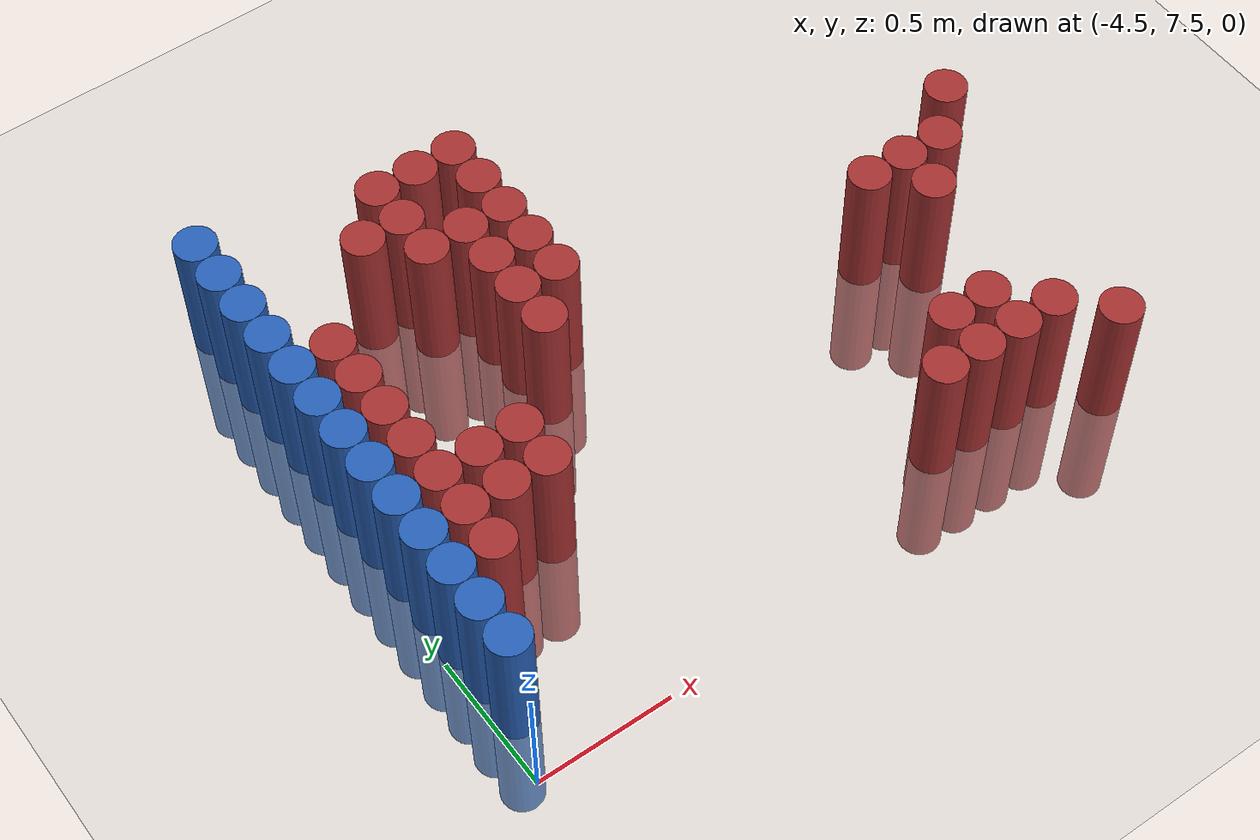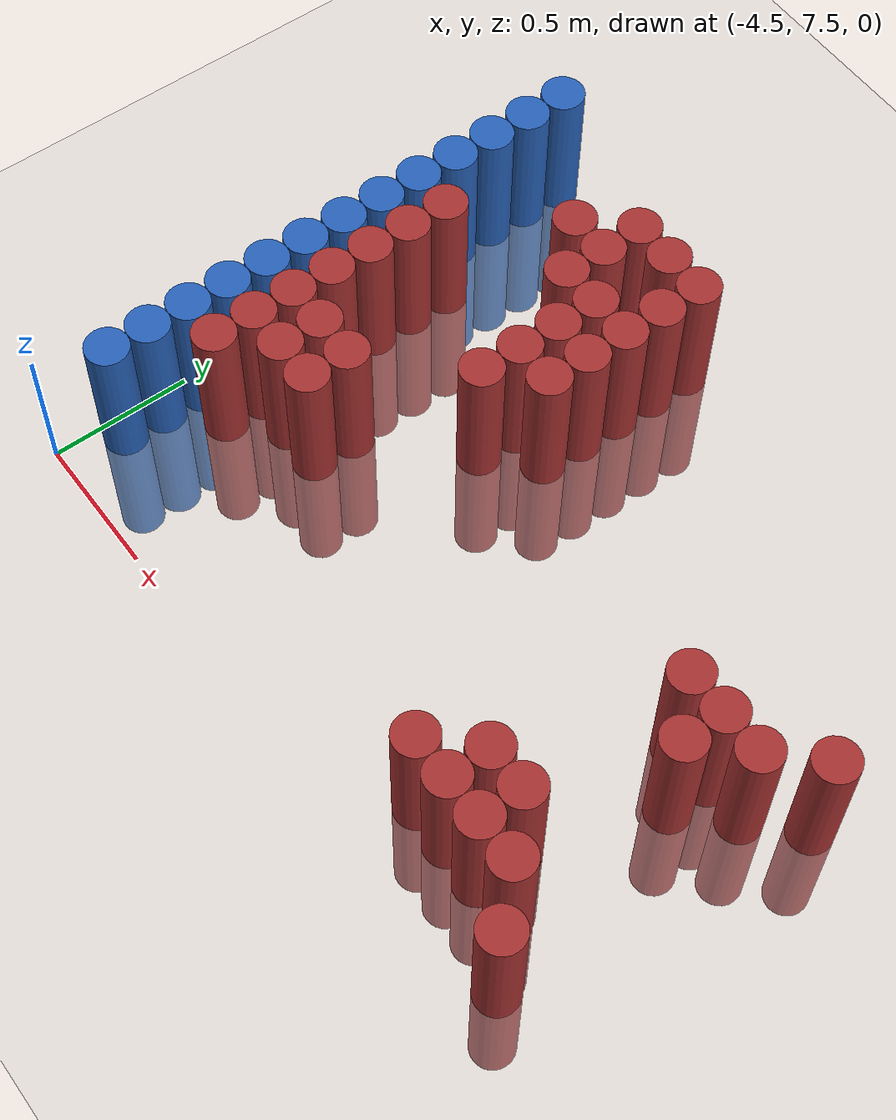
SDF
<sdf version="1.6">
 <world name="default">
  <model name="ground_plane">
   <static>1</static>
   <link name="link">
    <collision name="collision">
     <geometry><plane><normal>0 0 1</normal><size>100 100</size></plane></geometry>
     <surface><friction><ode><mu>100</mu><mu2>50</mu2></ode></friction></surface>
    </collision>
    <visual name="visual">
     <cast_shadows>0</cast_shadows>
     <geometry><plane><normal>0 0 1</normal><size>100 100</size></plane></geometry>
     <material>
      <script><uri>file://media/materials/scripts/gazebo.material</uri><name>Gazebo/Grey</name></script>
     </material>
    </visual>
   </link>
  </model>
  <model name="unit_cylinder_113">
   <static>1</static>
   <pose>-4.425000 7.725000 0.000000 0.000000 0.000000 0.000000</pose>
   <link name="link">
    <inertial>
     <mass>1</mass>
     <inertia><ixx>0.145833</ixx><ixy>0</ixy><ixz>0</ixz><iyy>0.145833</iyy><iyz>0</iyz><izz>0.125</izz></inertia>
    </inertial>
    <collision name="collision">
     <geometry><cylinder><radius>0.075000</radius><length>1</length></cylinder></geometry>
    </collision>
    <visual name="visual">
     <geometry><cylinder><radius>0.075000</radius><length>1</length></cylinder></geometry>
     <material>
      <ambient>0.152000 0.379000 0.720000 1</ambient>
      <diffuse>0.152000 0.379000 0.720000 1</diffuse>
     </material>
     <material>
      <script><name>Gazebo/Grey</name><uri>file://media/materials/scripts/gazebo.material</uri></script>
     </material>
    </visual>
   </link>
  </model>
  <model name="unit_cylinder_114">
   <static>1</static>
   <pose>-4.425000 7.875000 0.000000 0.000000 0.000000 0.000000</pose>
   <link name="link">
    <inertial>
     <mass>1</mass>
     <inertia><ixx>0.145833</ixx><ixy>0</ixy><ixz>0</ixz><iyy>0.145833</iyy><iyz>0</iyz><izz>0.125</izz></inertia>
    </inertial>
    <collision name="collision">
     <geometry><cylinder><radius>0.075000</radius><length>1</length></cylinder></geometry>
    </collision>
    <visual name="visual">
     <geometry><cylinder><radius>0.075000</radius><length>1</length></cylinder></geometry>
     <material>
      <ambient>0.152000 0.379000 0.720000 1</ambient>
      <diffuse>0.152000 0.379000 0.720000 1</diffuse>
     </material>
     <material>
      <script><name>Gazebo/Grey</name><uri>file://media/materials/scripts/gazebo.material</uri></script>
     </material>
    </visual>
   </link>
  </model>
  <model name="unit_cylinder_115">
   <static>1</static>
   <pose>-4.425000 8.025000 0.000000 0.000000 0.000000 0.000000</pose>
   <link name="link">
    <inertial>
     <mass>1</mass>
     <inertia><ixx>0.145833</ixx><ixy>0</ixy><ixz>0</ixz><iyy>0.145833</iyy><iyz>0</iyz><izz>0.125</izz></inertia>
    </inertial>
    <collision name="collision">
     <geometry><cylinder><radius>0.075000</radius><length>1</length></cylinder></geometry>
    </collision>
    <visual name="visual">
     <geometry><cylinder><radius>0.075000</radius><length>1</length></cylinder></geometry>
     <material>
      <ambient>0.152000 0.379000 0.720000 1</ambient>
      <diffuse>0.152000 0.379000 0.720000 1</diffuse>
     </material>
     <material>
      <script><name>Gazebo/Grey</name><uri>file://media/materials/scripts/gazebo.material</uri></script>
     </material>
    </visual>
   </link>
  </model>
  <model name="unit_cylinder_116">
   <static>1</static>
   <pose>-4.425000 8.175000 0.000000 0.000000 0.000000 0.000000</pose>
   <link name="link">
    <inertial>
     <mass>1</mass>
     <inertia><ixx>0.145833</ixx><ixy>0</ixy><ixz>0</ixz><iyy>0.145833</iyy><iyz>0</iyz><izz>0.125</izz></inertia>
    </inertial>
    <collision name="collision">
     <geometry><cylinder><radius>0.075000</radius><length>1</length></cylinder></geometry>
    </collision>
    <visual name="visual">
     <geometry><cylinder><radius>0.075000</radius><length>1</length></cylinder></geometry>
     <material>
      <ambient>0.152000 0.379000 0.720000 1</ambient>
      <diffuse>0.152000 0.379000 0.720000 1</diffuse>
     </material>
     <material>
      <script><name>Gazebo/Grey</name><uri>file://media/materials/scripts/gazebo.material</uri></script>
     </material>
    </visual>
   </link>
  </model>
  <model name="unit_cylinder_117">
   <static>1</static>
   <pose>-4.425000 8.325000 0.000000 0.000000 0.000000 0.000000</pose>
   <link name="link">
    <inertial>
     <mass>1</mass>
     <inertia><ixx>0.145833</ixx><ixy>0</ixy><ixz>0</ixz><iyy>0.145833</iyy><iyz>0</iyz><izz>0.125</izz></inertia>
    </inertial>
    <collision name="collision">
     <geometry><cylinder><radius>0.075000</radius><length>1</length></cylinder></geometry>
    </collision>
    <visual name="visual">
     <geometry><cylinder><radius>0.075000</radius><length>1</length></cylinder></geometry>
     <material>
      <ambient>0.152000 0.379000 0.720000 1</ambient>
      <diffuse>0.152000 0.379000 0.720000 1</diffuse>
     </material>
     <material>
      <script><name>Gazebo/Grey</name><uri>file://media/materials/scripts/gazebo.material</uri></script>
     </material>
    </visual>
   </link>
  </model>
  <model name="unit_cylinder_118">
   <static>1</static>
   <pose>-4.425000 8.475000 0.000000 0.000000 0.000000 0.000000</pose>
   <link name="link">
    <inertial>
     <mass>1</mass>
     <inertia><ixx>0.145833</ixx><ixy>0</ixy><ixz>0</ixz><iyy>0.145833</iyy><iyz>0</iyz><izz>0.125</izz></inertia>
    </inertial>
    <collision name="collision">
     <geometry><cylinder><radius>0.075000</radius><length>1</length></cylinder></geometry>
    </collision>
    <visual name="visual">
     <geometry><cylinder><radius>0.075000</radius><length>1</length></cylinder></geometry>
     <material>
      <ambient>0.152000 0.379000 0.720000 1</ambient>
      <diffuse>0.152000 0.379000 0.720000 1</diffuse>
     </material>
     <material>
      <script><name>Gazebo/Grey</name><uri>file://media/materials/scripts/gazebo.material</uri></script>
     </material>
    </visual>
   </link>
  </model>
  <model name="unit_cylinder_119">
   <static>1</static>
   <pose>-4.425000 8.625000 0.000000 0.000000 0.000000 0.000000</pose>
   <link name="link">
    <inertial>
     <mass>1</mass>
     <inertia><ixx>0.145833</ixx><ixy>0</ixy><ixz>0</ixz><iyy>0.145833</iyy><iyz>0</iyz><izz>0.125</izz></inertia>
    </inertial>
    <collision name="collision">
     <geometry><cylinder><radius>0.075000</radius><length>1</length></cylinder></geometry>
    </collision>
    <visual name="visual">
     <geometry><cylinder><radius>0.075000</radius><length>1</length></cylinder></geometry>
     <material>
      <ambient>0.152000 0.379000 0.720000 1</ambient>
      <diffuse>0.152000 0.379000 0.720000 1</diffuse>
     </material>
     <material>
      <script><name>Gazebo/Grey</name><uri>file://media/materials/scripts/gazebo.material</uri></script>
     </material>
    </visual>
   </link>
  </model>
  <model name="unit_cylinder_120">
   <static>1</static>
   <pose>-4.425000 8.775000 0.000000 0.000000 0.000000 0.000000</pose>
   <link name="link">
    <inertial>
     <mass>1</mass>
     <inertia><ixx>0.145833</ixx><ixy>0</ixy><ixz>0</ixz><iyy>0.145833</iyy><iyz>0</iyz><izz>0.125</izz></inertia>
    </inertial>
    <collision name="collision">
     <geometry><cylinder><radius>0.075000</radius><length>1</length></cylinder></geometry>
    </collision>
    <visual name="visual">
     <geometry><cylinder><radius>0.075000</radius><length>1</length></cylinder></geometry>
     <material>
      <ambient>0.152000 0.379000 0.720000 1</ambient>
      <diffuse>0.152000 0.379000 0.720000 1</diffuse>
     </material>
     <material>
      <script><name>Gazebo/Grey</name><uri>file://media/materials/scripts/gazebo.material</uri></script>
     </material>
    </visual>
   </link>
  </model>
  <model name="unit_cylinder_121">
   <static>1</static>
   <pose>-4.425000 8.925000 0.000000 0.000000 0.000000 0.000000</pose>
   <link name="link">
    <inertial>
     <mass>1</mass>
     <inertia><ixx>0.145833</ixx><ixy>0</ixy><ixz>0</ixz><iyy>0.145833</iyy><iyz>0</iyz><izz>0.125</izz></inertia>
    </inertial>
    <collision name="collision">
     <geometry><cylinder><radius>0.075000</radius><length>1</length></cylinder></geometry>
    </collision>
    <visual name="visual">
     <geometry><cylinder><radius>0.075000</radius><length>1</length></cylinder></geometry>
     <material>
      <ambient>0.152000 0.379000 0.720000 1</ambient>
      <diffuse>0.152000 0.379000 0.720000 1</diffuse>
     </material>
     <material>
      <script><name>Gazebo/Grey</name><uri>file://media/materials/scripts/gazebo.material</uri></script>
     </material>
    </visual>
   </link>
  </model>
  <model name="unit_cylinder_122">
   <static>1</static>
   <pose>-4.425000 9.075000 0.000000 0.000000 0.000000 0.000000</pose>
   <link name="link">
    <inertial>
     <mass>1</mass>
     <inertia><ixx>0.145833</ixx><ixy>0</ixy><ixz>0</ixz><iyy>0.145833</iyy><iyz>0</iyz><izz>0.125</izz></inertia>
    </inertial>
    <collision name="collision">
     <geometry><cylinder><radius>0.075000</radius><length>1</length></cylinder></geometry>
    </collision>
    <visual name="visual">
     <geometry><cylinder><radius>0.075000</radius><length>1</length></cylinder></geometry>
     <material>
      <ambient>0.152000 0.379000 0.720000 1</ambient>
      <diffuse>0.152000 0.379000 0.720000 1</diffuse>
     </material>
     <material>
      <script><name>Gazebo/Grey</name><uri>file://media/materials/scripts/gazebo.material</uri></script>
     </material>
    </visual>
   </link>
  </model>
  <model name="unit_cylinder_123">
   <static>1</static>
   <pose>-4.425000 9.225000 0.000000 0.000000 0.000000 0.000000</pose>
   <link name="link">
    <inertial>
     <mass>1</mass>
     <inertia><ixx>0.145833</ixx><ixy>0</ixy><ixz>0</ixz><iyy>0.145833</iyy><iyz>0</iyz><izz>0.125</izz></inertia>
    </inertial>
    <collision name="collision">
     <geometry><cylinder><radius>0.075000</radius><length>1</length></cylinder></geometry>
    </collision>
    <visual name="visual">
     <geometry><cylinder><radius>0.075000</radius><length>1</length></cylinder></geometry>
     <material>
      <ambient>0.152000 0.379000 0.720000 1</ambient>
      <diffuse>0.152000 0.379000 0.720000 1</diffuse>
     </material>
     <material>
      <script><name>Gazebo/Grey</name><uri>file://media/materials/scripts/gazebo.material</uri></script>
     </material>
    </visual>
   </link>
  </model>
  <model name="unit_cylinder_124">
   <static>1</static>
   <pose>-4.425000 9.375000 0.000000 0.000000 0.000000 0.000000</pose>
   <link name="link">
    <inertial>
     <mass>1</mass>
     <inertia><ixx>0.145833</ixx><ixy>0</ixy><ixz>0</ixz><iyy>0.145833</iyy><iyz>0</iyz><izz>0.125</izz></inertia>
    </inertial>
    <collision name="collision">
     <geometry><cylinder><radius>0.075000</radius><length>1</length></cylinder></geometry>
    </collision>
    <visual name="visual">
     <geometry><cylinder><radius>0.075000</radius><length>1</length></cylinder></geometry>
     <material>
      <ambient>0.152000 0.379000 0.720000 1</ambient>
      <diffuse>0.152000 0.379000 0.720000 1</diffuse>
     </material>
     <material>
      <script><name>Gazebo/Grey</name><uri>file://media/materials/scripts/gazebo.material</uri></script>
     </material>
    </visual>
   </link>
  </model>
  <model name="unit_cylinder_125">
   <static>1</static>
   <pose>-4.425000 9.525000 0.000000 0.000000 0.000000 0.000000</pose>
   <link name="link">
    <inertial>
     <mass>1</mass>
     <inertia><ixx>0.145833</ixx><ixy>0</ixy><ixz>0</ixz><iyy>0.145833</iyy><iyz>0</iyz><izz>0.125</izz></inertia>
    </inertial>
    <collision name="collision">
     <geometry><cylinder><radius>0.075000</radius><length>1</length></cylinder></geometry>
    </collision>
    <visual name="visual">
     <geometry><cylinder><radius>0.075000</radius><length>1</length></cylinder></geometry>
     <material>
      <ambient>0.152000 0.379000 0.720000 1</ambient>
      <diffuse>0.152000 0.379000 0.720000 1</diffuse>
     </material>
     <material>
      <script><name>Gazebo/Grey</name><uri>file://media/materials/scripts/gazebo.material</uri></script>
     </material>
    </visual>
   </link>
  </model>
  <model name="unit_cylinder_137">
   <static>1</static>
   <pose>-4.275000 8.025000 0.000000 0.000000 0.000000 0.000000</pose>
   <link name="link">
    <inertial>
     <mass>1</mass>
     <inertia><ixx>0.145833</ixx><ixy>0</ixy><ixz>0</ixz><iyy>0.145833</iyy><iyz>0</iyz><izz>0.125</izz></inertia>
    </inertial>
    <collision name="collision">
     <geometry><cylinder><radius>0.075000</radius><length>1</length></cylinder></geometry>
    </collision>
    <visual name="visual">
     <geometry><cylinder><radius>0.075000</radius><length>1</length></cylinder></geometry>
     <material>
      <ambient>0.648000 0.192000 0.192000 1</ambient>
      <diffuse>0.648000 0.192000 0.192000 1</diffuse>
     </material>
     <material>
      <script><name>Gazebo/Grey</name><uri>file://media/materials/scripts/gazebo.material</uri></script>
     </material>
    </visual>
   </link>
  </model>
  <model name="unit_cylinder_138">
   <static>1</static>
   <pose>-4.275000 8.175000 0.000000 0.000000 0.000000 0.000000</pose>
   <link name="link">
    <inertial>
     <mass>1</mass>
     <inertia><ixx>0.145833</ixx><ixy>0</ixy><ixz>0</ixz><iyy>0.145833</iyy><iyz>0</iyz><izz>0.125</izz></inertia>
    </inertial>
    <collision name="collision">
     <geometry><cylinder><radius>0.075000</radius><length>1</length></cylinder></geometry>
    </collision>
    <visual name="visual">
     <geometry><cylinder><radius>0.075000</radius><length>1</length></cylinder></geometry>
     <material>
      <ambient>0.648000 0.192000 0.192000 1</ambient>
      <diffuse>0.648000 0.192000 0.192000 1</diffuse>
     </material>
     <material>
      <script><name>Gazebo/Grey</name><uri>file://media/materials/scripts/gazebo.material</uri></script>
     </material>
    </visual>
   </link>
  </model>
  <model name="unit_cylinder_139">
   <static>1</static>
   <pose>-4.275000 8.325000 0.000000 0.000000 0.000000 0.000000</pose>
   <link name="link">
    <inertial>
     <mass>1</mass>
     <inertia><ixx>0.145833</ixx><ixy>0</ixy><ixz>0</ixz><iyy>0.145833</iyy><iyz>0</iyz><izz>0.125</izz></inertia>
    </inertial>
    <collision name="collision">
     <geometry><cylinder><radius>0.075000</radius><length>1</length></cylinder></geometry>
    </collision>
    <visual name="visual">
     <geometry><cylinder><radius>0.075000</radius><length>1</length></cylinder></geometry>
     <material>
      <ambient>0.648000 0.192000 0.192000 1</ambient>
      <diffuse>0.648000 0.192000 0.192000 1</diffuse>
     </material>
     <material>
      <script><name>Gazebo/Grey</name><uri>file://media/materials/scripts/gazebo.material</uri></script>
     </material>
    </visual>
   </link>
  </model>
  <model name="unit_cylinder_140">
   <static>1</static>
   <pose>-4.275000 8.475000 0.000000 0.000000 0.000000 0.000000</pose>
   <link name="link">
    <inertial>
     <mass>1</mass>
     <inertia><ixx>0.145833</ixx><ixy>0</ixy><ixz>0</ixz><iyy>0.145833</iyy><iyz>0</iyz><izz>0.125</izz></inertia>
    </inertial>
    <collision name="collision">
     <geometry><cylinder><radius>0.075000</radius><length>1</length></cylinder></geometry>
    </collision>
    <visual name="visual">
     <geometry><cylinder><radius>0.075000</radius><length>1</length></cylinder></geometry>
     <material>
      <ambient>0.648000 0.192000 0.192000 1</ambient>
      <diffuse>0.648000 0.192000 0.192000 1</diffuse>
     </material>
     <material>
      <script><name>Gazebo/Grey</name><uri>file://media/materials/scripts/gazebo.material</uri></script>
     </material>
    </visual>
   </link>
  </model>
  <model name="unit_cylinder_141">
   <static>1</static>
   <pose>-4.275000 8.625000 0.000000 0.000000 0.000000 0.000000</pose>
   <link name="link">
    <inertial>
     <mass>1</mass>
     <inertia><ixx>0.145833</ixx><ixy>0</ixy><ixz>0</ixz><iyy>0.145833</iyy><iyz>0</iyz><izz>0.125</izz></inertia>
    </inertial>
    <collision name="collision">
     <geometry><cylinder><radius>0.075000</radius><length>1</length></cylinder></geometry>
    </collision>
    <visual name="visual">
     <geometry><cylinder><radius>0.075000</radius><length>1</length></cylinder></geometry>
     <material>
      <ambient>0.648000 0.192000 0.192000 1</ambient>
      <diffuse>0.648000 0.192000 0.192000 1</diffuse>
     </material>
     <material>
      <script><name>Gazebo/Grey</name><uri>file://media/materials/scripts/gazebo.material</uri></script>
     </material>
    </visual>
   </link>
  </model>
  <model name="unit_cylinder_142">
   <static>1</static>
   <pose>-4.275000 8.775000 0.000000 0.000000 0.000000 0.000000</pose>
   <link name="link">
    <inertial>
     <mass>1</mass>
     <inertia><ixx>0.145833</ixx><ixy>0</ixy><ixz>0</ixz><iyy>0.145833</iyy><iyz>0</iyz><izz>0.125</izz></inertia>
    </inertial>
    <collision name="collision">
     <geometry><cylinder><radius>0.075000</radius><length>1</length></cylinder></geometry>
    </collision>
    <visual name="visual">
     <geometry><cylinder><radius>0.075000</radius><length>1</length></cylinder></geometry>
     <material>
      <ambient>0.648000 0.192000 0.192000 1</ambient>
      <diffuse>0.648000 0.192000 0.192000 1</diffuse>
     </material>
     <material>
      <script><name>Gazebo/Grey</name><uri>file://media/materials/scripts/gazebo.material</uri></script>
     </material>
    </visual>
   </link>
  </model>
  <model name="unit_cylinder_143">
   <static>1</static>
   <pose>-4.275000 8.925000 0.000000 0.000000 0.000000 0.000000</pose>
   <link name="link">
    <inertial>
     <mass>1</mass>
     <inertia><ixx>0.145833</ixx><ixy>0</ixy><ixz>0</ixz><iyy>0.145833</iyy><iyz>0</iyz><izz>0.125</izz></inertia>
    </inertial>
    <collision name="collision">
     <geometry><cylinder><radius>0.075000</radius><length>1</length></cylinder></geometry>
    </collision>
    <visual name="visual">
     <geometry><cylinder><radius>0.075000</radius><length>1</length></cylinder></geometry>
     <material>
      <ambient>0.648000 0.192000 0.192000 1</ambient>
      <diffuse>0.648000 0.192000 0.192000 1</diffuse>
     </material>
     <material>
      <script><name>Gazebo/Grey</name><uri>file://media/materials/scripts/gazebo.material</uri></script>
     </material>
    </visual>
   </link>
  </model>
  <model name="unit_cylinder_147">
   <static>1</static>
   <pose>-4.125000 8.175000 0.000000 0.000000 0.000000 0.000000</pose>
   <link name="link">
    <inertial>
     <mass>1</mass>
     <inertia><ixx>0.145833</ixx><ixy>0</ixy><ixz>0</ixz><iyy>0.145833</iyy><iyz>0</iyz><izz>0.125</izz></inertia>
    </inertial>
    <collision name="collision">
     <geometry><cylinder><radius>0.075000</radius><length>1</length></cylinder></geometry>
    </collision>
    <visual name="visual">
     <geometry><cylinder><radius>0.075000</radius><length>1</length></cylinder></geometry>
     <material>
      <ambient>0.648000 0.192000 0.192000 1</ambient>
      <diffuse>0.648000 0.192000 0.192000 1</diffuse>
     </material>
     <material>
      <script><name>Gazebo/Grey</name><uri>file://media/materials/scripts/gazebo.material</uri></script>
     </material>
    </visual>
   </link>
  </model>
  <model name="unit_cylinder_148">
   <static>1</static>
   <pose>-4.125000 8.325000 0.000000 0.000000 0.000000 0.000000</pose>
   <link name="link">
    <inertial>
     <mass>1</mass>
     <inertia><ixx>0.145833</ixx><ixy>0</ixy><ixz>0</ixz><iyy>0.145833</iyy><iyz>0</iyz><izz>0.125</izz></inertia>
    </inertial>
    <collision name="collision">
     <geometry><cylinder><radius>0.075000</radius><length>1</length></cylinder></geometry>
    </collision>
    <visual name="visual">
     <geometry><cylinder><radius>0.075000</radius><length>1</length></cylinder></geometry>
     <material>
      <ambient>0.648000 0.192000 0.192000 1</ambient>
      <diffuse>0.648000 0.192000 0.192000 1</diffuse>
     </material>
     <material>
      <script><name>Gazebo/Grey</name><uri>file://media/materials/scripts/gazebo.material</uri></script>
     </material>
    </visual>
   </link>
  </model>
  <model name="unit_cylinder_151">
   <static>1</static>
   <pose>-3.975000 8.175000 0.000000 0.000000 0.000000 0.000000</pose>
   <link name="link">
    <inertial>
     <mass>1</mass>
     <inertia><ixx>0.145833</ixx><ixy>0</ixy><ixz>0</ixz><iyy>0.145833</iyy><iyz>0</iyz><izz>0.125</izz></inertia>
    </inertial>
    <collision name="collision">
     <geometry><cylinder><radius>0.075000</radius><length>1</length></cylinder></geometry>
    </collision>
    <visual name="visual">
     <geometry><cylinder><radius>0.075000</radius><length>1</length></cylinder></geometry>
     <material>
      <ambient>0.648000 0.192000 0.192000 1</ambient>
      <diffuse>0.648000 0.192000 0.192000 1</diffuse>
     </material>
     <material>
      <script><name>Gazebo/Grey</name><uri>file://media/materials/scripts/gazebo.material</uri></script>
     </material>
    </visual>
   </link>
  </model>
  <model name="unit_cylinder_152">
   <static>1</static>
   <pose>-3.975000 8.325000 0.000000 0.000000 0.000000 0.000000</pose>
   <link name="link">
    <inertial>
     <mass>1</mass>
     <inertia><ixx>0.145833</ixx><ixy>0</ixy><ixz>0</ixz><iyy>0.145833</iyy><iyz>0</iyz><izz>0.125</izz></inertia>
    </inertial>
    <collision name="collision">
     <geometry><cylinder><radius>0.075000</radius><length>1</length></cylinder></geometry>
    </collision>
    <visual name="visual">
     <geometry><cylinder><radius>0.075000</radius><length>1</length></cylinder></geometry>
     <material>
      <ambient>0.648000 0.192000 0.192000 1</ambient>
      <diffuse>0.648000 0.192000 0.192000 1</diffuse>
     </material>
     <material>
      <script><name>Gazebo/Grey</name><uri>file://media/materials/scripts/gazebo.material</uri></script>
     </material>
    </visual>
   </link>
  </model>
  <model name="unit_cylinder_153">
   <static>1</static>
   <pose>-3.975000 9.225000 0.000000 0.000000 0.000000 0.000000</pose>
   <link name="link">
    <inertial>
     <mass>1</mass>
     <inertia><ixx>0.145833</ixx><ixy>0</ixy><ixz>0</ixz><iyy>0.145833</iyy><iyz>0</iyz><izz>0.125</izz></inertia>
    </inertial>
    <collision name="collision">
     <geometry><cylinder><radius>0.075000</radius><length>1</length></cylinder></geometry>
    </collision>
    <visual name="visual">
     <geometry><cylinder><radius>0.075000</radius><length>1</length></cylinder></geometry>
     <material>
      <ambient>0.648000 0.192000 0.192000 1</ambient>
      <diffuse>0.648000 0.192000 0.192000 1</diffuse>
     </material>
     <material>
      <script><name>Gazebo/Grey</name><uri>file://media/materials/scripts/gazebo.material</uri></script>
     </material>
    </visual>
   </link>
  </model>
  <model name="unit_cylinder_156">
   <static>1</static>
   <pose>-3.825000 9.075000 0.000000 0.000000 0.000000 0.000000</pose>
   <link name="link">
    <inertial>
     <mass>1</mass>
     <inertia><ixx>0.145833</ixx><ixy>0</ixy><ixz>0</ixz><iyy>0.145833</iyy><iyz>0</iyz><izz>0.125</izz></inertia>
    </inertial>
    <collision name="collision">
     <geometry><cylinder><radius>0.075000</radius><length>1</length></cylinder></geometry>
    </collision>
    <visual name="visual">
     <geometry><cylinder><radius>0.075000</radius><length>1</length></cylinder></geometry>
     <material>
      <ambient>0.648000 0.192000 0.192000 1</ambient>
      <diffuse>0.648000 0.192000 0.192000 1</diffuse>
     </material>
     <material>
      <script><name>Gazebo/Grey</name><uri>file://media/materials/scripts/gazebo.material</uri></script>
     </material>
    </visual>
   </link>
  </model>
  <model name="unit_cylinder_157">
   <static>1</static>
   <pose>-3.825000 9.225000 0.000000 0.000000 0.000000 0.000000</pose>
   <link name="link">
    <inertial>
     <mass>1</mass>
     <inertia><ixx>0.145833</ixx><ixy>0</ixy><ixz>0</ixz><iyy>0.145833</iyy><iyz>0</iyz><izz>0.125</izz></inertia>
    </inertial>
    <collision name="collision">
     <geometry><cylinder><radius>0.075000</radius><length>1</length></cylinder></geometry>
    </collision>
    <visual name="visual">
     <geometry><cylinder><radius>0.075000</radius><length>1</length></cylinder></geometry>
     <material>
      <ambient>0.648000 0.192000 0.192000 1</ambient>
      <diffuse>0.648000 0.192000 0.192000 1</diffuse>
     </material>
     <material>
      <script><name>Gazebo/Grey</name><uri>file://media/materials/scripts/gazebo.material</uri></script>
     </material>
    </visual>
   </link>
  </model>
  <model name="unit_cylinder_158">
   <static>1</static>
   <pose>-3.825000 9.375000 0.000000 0.000000 0.000000 0.000000</pose>
   <link name="link">
    <inertial>
     <mass>1</mass>
     <inertia><ixx>0.145833</ixx><ixy>0</ixy><ixz>0</ixz><iyy>0.145833</iyy><iyz>0</iyz><izz>0.125</izz></inertia>
    </inertial>
    <collision name="collision">
     <geometry><cylinder><radius>0.075000</radius><length>1</length></cylinder></geometry>
    </collision>
    <visual name="visual">
     <geometry><cylinder><radius>0.075000</radius><length>1</length></cylinder></geometry>
     <material>
      <ambient>0.648000 0.192000 0.192000 1</ambient>
      <diffuse>0.648000 0.192000 0.192000 1</diffuse>
     </material>
     <material>
      <script><name>Gazebo/Grey</name><uri>file://media/materials/scripts/gazebo.material</uri></script>
     </material>
    </visual>
   </link>
  </model>
  <model name="unit_cylinder_161">
   <static>1</static>
   <pose>-3.675000 8.625000 0.000000 0.000000 0.000000 0.000000</pose>
   <link name="link">
    <inertial>
     <mass>1</mass>
     <inertia><ixx>0.145833</ixx><ixy>0</ixy><ixz>0</ixz><iyy>0.145833</iyy><iyz>0</iyz><izz>0.125</izz></inertia>
    </inertial>
    <collision name="collision">
     <geometry><cylinder><radius>0.075000</radius><length>1</length></cylinder></geometry>
    </collision>
    <visual name="visual">
     <geometry><cylinder><radius>0.075000</radius><length>1</length></cylinder></geometry>
     <material>
      <ambient>0.648000 0.192000 0.192000 1</ambient>
      <diffuse>0.648000 0.192000 0.192000 1</diffuse>
     </material>
     <material>
      <script><name>Gazebo/Grey</name><uri>file://media/materials/scripts/gazebo.material</uri></script>
     </material>
    </visual>
   </link>
  </model>
  <model name="unit_cylinder_162">
   <static>1</static>
   <pose>-3.675000 8.775000 0.000000 0.000000 0.000000 0.000000</pose>
   <link name="link">
    <inertial>
     <mass>1</mass>
     <inertia><ixx>0.145833</ixx><ixy>0</ixy><ixz>0</ixz><iyy>0.145833</iyy><iyz>0</iyz><izz>0.125</izz></inertia>
    </inertial>
    <collision name="collision">
     <geometry><cylinder><radius>0.075000</radius><length>1</length></cylinder></geometry>
    </collision>
    <visual name="visual">
     <geometry><cylinder><radius>0.075000</radius><length>1</length></cylinder></geometry>
     <material>
      <ambient>0.648000 0.192000 0.192000 1</ambient>
      <diffuse>0.648000 0.192000 0.192000 1</diffuse>
     </material>
     <material>
      <script><name>Gazebo/Grey</name><uri>file://media/materials/scripts/gazebo.material</uri></script>
     </material>
    </visual>
   </link>
  </model>
  <model name="unit_cylinder_163">
   <static>1</static>
   <pose>-3.675000 8.925000 0.000000 0.000000 0.000000 0.000000</pose>
   <link name="link">
    <inertial>
     <mass>1</mass>
     <inertia><ixx>0.145833</ixx><ixy>0</ixy><ixz>0</ixz><iyy>0.145833</iyy><iyz>0</iyz><izz>0.125</izz></inertia>
    </inertial>
    <collision name="collision">
     <geometry><cylinder><radius>0.075000</radius><length>1</length></cylinder></geometry>
    </collision>
    <visual name="visual">
     <geometry><cylinder><radius>0.075000</radius><length>1</length></cylinder></geometry>
     <material>
      <ambient>0.648000 0.192000 0.192000 1</ambient>
      <diffuse>0.648000 0.192000 0.192000 1</diffuse>
     </material>
     <material>
      <script><name>Gazebo/Grey</name><uri>file://media/materials/scripts/gazebo.material</uri></script>
     </material>
    </visual>
   </link>
  </model>
  <model name="unit_cylinder_164">
   <static>1</static>
   <pose>-3.675000 9.075000 0.000000 0.000000 0.000000 0.000000</pose>
   <link name="link">
    <inertial>
     <mass>1</mass>
     <inertia><ixx>0.145833</ixx><ixy>0</ixy><ixz>0</ixz><iyy>0.145833</iyy><iyz>0</iyz><izz>0.125</izz></inertia>
    </inertial>
    <collision name="collision">
     <geometry><cylinder><radius>0.075000</radius><length>1</length></cylinder></geometry>
    </collision>
    <visual name="visual">
     <geometry><cylinder><radius>0.075000</radius><length>1</length></cylinder></geometry>
     <material>
      <ambient>0.648000 0.192000 0.192000 1</ambient>
      <diffuse>0.648000 0.192000 0.192000 1</diffuse>
     </material>
     <material>
      <script><name>Gazebo/Grey</name><uri>file://media/materials/scripts/gazebo.material</uri></script>
     </material>
    </visual>
   </link>
  </model>
  <model name="unit_cylinder_165">
   <static>1</static>
   <pose>-3.675000 9.375000 0.000000 0.000000 0.000000 0.000000</pose>
   <link name="link">
    <inertial>
     <mass>1</mass>
     <inertia><ixx>0.145833</ixx><ixy>0</ixy><ixz>0</ixz><iyy>0.145833</iyy><iyz>0</iyz><izz>0.125</izz></inertia>
    </inertial>
    <collision name="collision">
     <geometry><cylinder><radius>0.075000</radius><length>1</length></cylinder></geometry>
    </collision>
    <visual name="visual">
     <geometry><cylinder><radius>0.075000</radius><length>1</length></cylinder></geometry>
     <material>
      <ambient>0.648000 0.192000 0.192000 1</ambient>
      <diffuse>0.648000 0.192000 0.192000 1</diffuse>
     </material>
     <material>
      <script><name>Gazebo/Grey</name><uri>file://media/materials/scripts/gazebo.material</uri></script>
     </material>
    </visual>
   </link>
  </model>
  <model name="unit_cylinder_166">
   <static>1</static>
   <pose>-3.525000 8.775000 0.000000 0.000000 0.000000 0.000000</pose>
   <link name="link">
    <inertial>
     <mass>1</mass>
     <inertia><ixx>0.145833</ixx><ixy>0</ixy><ixz>0</ixz><iyy>0.145833</iyy><iyz>0</iyz><izz>0.125</izz></inertia>
    </inertial>
    <collision name="collision">
     <geometry><cylinder><radius>0.075000</radius><length>1</length></cylinder></geometry>
    </collision>
    <visual name="visual">
     <geometry><cylinder><radius>0.075000</radius><length>1</length></cylinder></geometry>
     <material>
      <ambient>0.648000 0.192000 0.192000 1</ambient>
      <diffuse>0.648000 0.192000 0.192000 1</diffuse>
     </material>
     <material>
      <script><name>Gazebo/Grey</name><uri>file://media/materials/scripts/gazebo.material</uri></script>
     </material>
    </visual>
   </link>
  </model>
  <model name="unit_cylinder_167">
   <static>1</static>
   <pose>-3.525000 8.925000 0.000000 0.000000 0.000000 0.000000</pose>
   <link name="link">
    <inertial>
     <mass>1</mass>
     <inertia><ixx>0.145833</ixx><ixy>0</ixy><ixz>0</ixz><iyy>0.145833</iyy><iyz>0</iyz><izz>0.125</izz></inertia>
    </inertial>
    <collision name="collision">
     <geometry><cylinder><radius>0.075000</radius><length>1</length></cylinder></geometry>
    </collision>
    <visual name="visual">
     <geometry><cylinder><radius>0.075000</radius><length>1</length></cylinder></geometry>
     <material>
      <ambient>0.648000 0.192000 0.192000 1</ambient>
      <diffuse>0.648000 0.192000 0.192000 1</diffuse>
     </material>
     <material>
      <script><name>Gazebo/Grey</name><uri>file://media/materials/scripts/gazebo.material</uri></script>
     </material>
    </visual>
   </link>
  </model>
  <model name="unit_cylinder_168">
   <static>1</static>
   <pose>-3.525000 9.075000 0.000000 0.000000 0.000000 0.000000</pose>
   <link name="link">
    <inertial>
     <mass>1</mass>
     <inertia><ixx>0.145833</ixx><ixy>0</ixy><ixz>0</ixz><iyy>0.145833</iyy><iyz>0</iyz><izz>0.125</izz></inertia>
    </inertial>
    <collision name="collision">
     <geometry><cylinder><radius>0.075000</radius><length>1</length></cylinder></geometry>
    </collision>
    <visual name="visual">
     <geometry><cylinder><radius>0.075000</radius><length>1</length></cylinder></geometry>
     <material>
      <ambient>0.648000 0.192000 0.192000 1</ambient>
      <diffuse>0.648000 0.192000 0.192000 1</diffuse>
     </material>
     <material>
      <script><name>Gazebo/Grey</name><uri>file://media/materials/scripts/gazebo.material</uri></script>
     </material>
    </visual>
   </link>
  </model>
  <model name="unit_cylinder_169">
   <static>1</static>
   <pose>-3.525000 9.225000 0.000000 0.000000 0.000000 0.000000</pose>
   <link name="link">
    <inertial>
     <mass>1</mass>
     <inertia><ixx>0.145833</ixx><ixy>0</ixy><ixz>0</ixz><iyy>0.145833</iyy><iyz>0</iyz><izz>0.125</izz></inertia>
    </inertial>
    <collision name="collision">
     <geometry><cylinder><radius>0.075000</radius><length>1</length></cylinder></geometry>
    </collision>
    <visual name="visual">
     <geometry><cylinder><radius>0.075000</radius><length>1</length></cylinder></geometry>
     <material>
      <ambient>0.648000 0.192000 0.192000 1</ambient>
      <diffuse>0.648000 0.192000 0.192000 1</diffuse>
     </material>
     <material>
      <script><name>Gazebo/Grey</name><uri>file://media/materials/scripts/gazebo.material</uri></script>
     </material>
    </visual>
   </link>
  </model>
  <model name="unit_cylinder_170">
   <static>1</static>
   <pose>-3.525000 9.375000 0.000000 0.000000 0.000000 0.000000</pose>
   <link name="link">
    <inertial>
     <mass>1</mass>
     <inertia><ixx>0.145833</ixx><ixy>0</ixy><ixz>0</ixz><iyy>0.145833</iyy><iyz>0</iyz><izz>0.125</izz></inertia>
    </inertial>
    <collision name="collision">
     <geometry><cylinder><radius>0.075000</radius><length>1</length></cylinder></geometry>
    </collision>
    <visual name="visual">
     <geometry><cylinder><radius>0.075000</radius><length>1</length></cylinder></geometry>
     <material>
      <ambient>0.648000 0.192000 0.192000 1</ambient>
      <diffuse>0.648000 0.192000 0.192000 1</diffuse>
     </material>
     <material>
      <script><name>Gazebo/Grey</name><uri>file://media/materials/scripts/gazebo.material</uri></script>
     </material>
    </visual>
   </link>
  </model>
  <model name="unit_cylinder_182">
   <static>1</static>
   <pose>-2.775000 7.725000 0.000000 0.000000 0.000000 0.000000</pose>
   <link name="link">
    <inertial>
     <mass>1</mass>
     <inertia><ixx>0.145833</ixx><ixy>0</ixy><ixz>0</ixz><iyy>0.145833</iyy><iyz>0</iyz><izz>0.125</izz></inertia>
    </inertial>
    <collision name="collision">
     <geometry><cylinder><radius>0.075000</radius><length>1</length></cylinder></geometry>
    </collision>
    <visual name="visual">
     <geometry><cylinder><radius>0.075000</radius><length>1</length></cylinder></geometry>
     <material>
      <ambient>0.648000 0.192000 0.192000 1</ambient>
      <diffuse>0.648000 0.192000 0.192000 1</diffuse>
     </material>
     <material>
      <script><name>Gazebo/Grey</name><uri>file://media/materials/scripts/gazebo.material</uri></script>
     </material>
    </visual>
   </link>
  </model>
  <model name="unit_cylinder_185">
   <static>1</static>
   <pose>-2.625000 7.725000 0.000000 0.000000 0.000000 0.000000</pose>
   <link name="link">
    <inertial>
     <mass>1</mass>
     <inertia><ixx>0.145833</ixx><ixy>0</ixy><ixz>0</ixz><iyy>0.145833</iyy><iyz>0</iyz><izz>0.125</izz></inertia>
    </inertial>
    <collision name="collision">
     <geometry><cylinder><radius>0.075000</radius><length>1</length></cylinder></geometry>
    </collision>
    <visual name="visual">
     <geometry><cylinder><radius>0.075000</radius><length>1</length></cylinder></geometry>
     <material>
      <ambient>0.648000 0.192000 0.192000 1</ambient>
      <diffuse>0.648000 0.192000 0.192000 1</diffuse>
     </material>
     <material>
      <script><name>Gazebo/Grey</name><uri>file://media/materials/scripts/gazebo.material</uri></script>
     </material>
    </visual>
   </link>
  </model>
  <model name="unit_cylinder_186">
   <static>1</static>
   <pose>-2.625000 7.875000 0.000000 0.000000 0.000000 0.000000</pose>
   <link name="link">
    <inertial>
     <mass>1</mass>
     <inertia><ixx>0.145833</ixx><ixy>0</ixy><ixz>0</ixz><iyy>0.145833</iyy><iyz>0</iyz><izz>0.125</izz></inertia>
    </inertial>
    <collision name="collision">
     <geometry><cylinder><radius>0.075000</radius><length>1</length></cylinder></geometry>
    </collision>
    <visual name="visual">
     <geometry><cylinder><radius>0.075000</radius><length>1</length></cylinder></geometry>
     <material>
      <ambient>0.648000 0.192000 0.192000 1</ambient>
      <diffuse>0.648000 0.192000 0.192000 1</diffuse>
     </material>
     <material>
      <script><name>Gazebo/Grey</name><uri>file://media/materials/scripts/gazebo.material</uri></script>
     </material>
    </visual>
   </link>
  </model>
  <model name="unit_cylinder_191">
   <static>1</static>
   <pose>-2.475000 7.725000 0.000000 0.000000 0.000000 0.000000</pose>
   <link name="link">
    <inertial>
     <mass>1</mass>
     <inertia><ixx>0.145833</ixx><ixy>0</ixy><ixz>0</ixz><iyy>0.145833</iyy><iyz>0</iyz><izz>0.125</izz></inertia>
    </inertial>
    <collision name="collision">
     <geometry><cylinder><radius>0.075000</radius><length>1</length></cylinder></geometry>
    </collision>
    <visual name="visual">
     <geometry><cylinder><radius>0.075000</radius><length>1</length></cylinder></geometry>
     <material>
      <ambient>0.648000 0.192000 0.192000 1</ambient>
      <diffuse>0.648000 0.192000 0.192000 1</diffuse>
     </material>
     <material>
      <script><name>Gazebo/Grey</name><uri>file://media/materials/scripts/gazebo.material</uri></script>
     </material>
    </visual>
   </link>
  </model>
  <model name="unit_cylinder_192">
   <static>1</static>
   <pose>-2.475000 7.875000 0.000000 0.000000 0.000000 0.000000</pose>
   <link name="link">
    <inertial>
     <mass>1</mass>
     <inertia><ixx>0.145833</ixx><ixy>0</ixy><ixz>0</ixz><iyy>0.145833</iyy><iyz>0</iyz><izz>0.125</izz></inertia>
    </inertial>
    <collision name="collision">
     <geometry><cylinder><radius>0.075000</radius><length>1</length></cylinder></geometry>
    </collision>
    <visual name="visual">
     <geometry><cylinder><radius>0.075000</radius><length>1</length></cylinder></geometry>
     <material>
      <ambient>0.648000 0.192000 0.192000 1</ambient>
      <diffuse>0.648000 0.192000 0.192000 1</diffuse>
     </material>
     <material>
      <script><name>Gazebo/Grey</name><uri>file://media/materials/scripts/gazebo.material</uri></script>
     </material>
    </visual>
   </link>
  </model>
  <model name="unit_cylinder_193">
   <static>1</static>
   <pose>-2.475000 8.475000 0.000000 0.000000 0.000000 0.000000</pose>
   <link name="link">
    <inertial>
     <mass>1</mass>
     <inertia><ixx>0.145833</ixx><ixy>0</ixy><ixz>0</ixz><iyy>0.145833</iyy><iyz>0</iyz><izz>0.125</izz></inertia>
    </inertial>
    <collision name="collision">
     <geometry><cylinder><radius>0.075000</radius><length>1</length></cylinder></geometry>
    </collision>
    <visual name="visual">
     <geometry><cylinder><radius>0.075000</radius><length>1</length></cylinder></geometry>
     <material>
      <ambient>0.648000 0.192000 0.192000 1</ambient>
      <diffuse>0.648000 0.192000 0.192000 1</diffuse>
     </material>
     <material>
      <script><name>Gazebo/Grey</name><uri>file://media/materials/scripts/gazebo.material</uri></script>
     </material>
    </visual>
   </link>
  </model>
  <model name="unit_cylinder_199">
   <static>1</static>
   <pose>-2.325000 7.725000 0.000000 0.000000 0.000000 0.000000</pose>
   <link name="link">
    <inertial>
     <mass>1</mass>
     <inertia><ixx>0.145833</ixx><ixy>0</ixy><ixz>0</ixz><iyy>0.145833</iyy><iyz>0</iyz><izz>0.125</izz></inertia>
    </inertial>
    <collision name="collision">
     <geometry><cylinder><radius>0.075000</radius><length>1</length></cylinder></geometry>
    </collision>
    <visual name="visual">
     <geometry><cylinder><radius>0.075000</radius><length>1</length></cylinder></geometry>
     <material>
      <ambient>0.648000 0.192000 0.192000 1</ambient>
      <diffuse>0.648000 0.192000 0.192000 1</diffuse>
     </material>
     <material>
      <script><name>Gazebo/Grey</name><uri>file://media/materials/scripts/gazebo.material</uri></script>
     </material>
    </visual>
   </link>
  </model>
  <model name="unit_cylinder_200">
   <static>1</static>
   <pose>-2.325000 8.325000 0.000000 0.000000 0.000000 0.000000</pose>
   <link name="link">
    <inertial>
     <mass>1</mass>
     <inertia><ixx>0.145833</ixx><ixy>0</ixy><ixz>0</ixz><iyy>0.145833</iyy><iyz>0</iyz><izz>0.125</izz></inertia>
    </inertial>
    <collision name="collision">
     <geometry><cylinder><radius>0.075000</radius><length>1</length></cylinder></geometry>
    </collision>
    <visual name="visual">
     <geometry><cylinder><radius>0.075000</radius><length>1</length></cylinder></geometry>
     <material>
      <ambient>0.648000 0.192000 0.192000 1</ambient>
      <diffuse>0.648000 0.192000 0.192000 1</diffuse>
     </material>
     <material>
      <script><name>Gazebo/Grey</name><uri>file://media/materials/scripts/gazebo.material</uri></script>
     </material>
    </visual>
   </link>
  </model>
  <model name="unit_cylinder_201">
   <static>1</static>
   <pose>-2.325000 8.475000 0.000000 0.000000 0.000000 0.000000</pose>
   <link name="link">
    <inertial>
     <mass>1</mass>
     <inertia><ixx>0.145833</ixx><ixy>0</ixy><ixz>0</ixz><iyy>0.145833</iyy><iyz>0</iyz><izz>0.125</izz></inertia>
    </inertial>
    <collision name="collision">
     <geometry><cylinder><radius>0.075000</radius><length>1</length></cylinder></geometry>
    </collision>
    <visual name="visual">
     <geometry><cylinder><radius>0.075000</radius><length>1</length></cylinder></geometry>
     <material>
      <ambient>0.648000 0.192000 0.192000 1</ambient>
      <diffuse>0.648000 0.192000 0.192000 1</diffuse>
     </material>
     <material>
      <script><name>Gazebo/Grey</name><uri>file://media/materials/scripts/gazebo.material</uri></script>
     </material>
    </visual>
   </link>
  </model>
  <model name="unit_cylinder_208">
   <static>1</static>
   <pose>-2.175000 7.575000 0.000000 0.000000 0.000000 0.000000</pose>
   <link name="link">
    <inertial>
     <mass>1</mass>
     <inertia><ixx>0.145833</ixx><ixy>0</ixy><ixz>0</ixz><iyy>0.145833</iyy><iyz>0</iyz><izz>0.125</izz></inertia>
    </inertial>
    <collision name="collision">
     <geometry><cylinder><radius>0.075000</radius><length>1</length></cylinder></geometry>
    </collision>
    <visual name="visual">
     <geometry><cylinder><radius>0.075000</radius><length>1</length></cylinder></geometry>
     <material>
      <ambient>0.648000 0.192000 0.192000 1</ambient>
      <diffuse>0.648000 0.192000 0.192000 1</diffuse>
     </material>
     <material>
      <script><name>Gazebo/Grey</name><uri>file://media/materials/scripts/gazebo.material</uri></script>
     </material>
    </visual>
   </link>
  </model>
  <model name="unit_cylinder_209">
   <static>1</static>
   <pose>-2.175000 8.475000 0.000000 0.000000 0.000000 0.000000</pose>
   <link name="link">
    <inertial>
     <mass>1</mass>
     <inertia><ixx>0.145833</ixx><ixy>0</ixy><ixz>0</ixz><iyy>0.145833</iyy><iyz>0</iyz><izz>0.125</izz></inertia>
    </inertial>
    <collision name="collision">
     <geometry><cylinder><radius>0.075000</radius><length>1</length></cylinder></geometry>
    </collision>
    <visual name="visual">
     <geometry><cylinder><radius>0.075000</radius><length>1</length></cylinder></geometry>
     <material>
      <ambient>0.648000 0.192000 0.192000 1</ambient>
      <diffuse>0.648000 0.192000 0.192000 1</diffuse>
     </material>
     <material>
      <script><name>Gazebo/Grey</name><uri>file://media/materials/scripts/gazebo.material</uri></script>
     </material>
    </visual>
   </link>
  </model>
  <model name="unit_cylinder_214">
   <static>1</static>
   <pose>-2.025000 8.625000 0.000000 0.000000 0.000000 0.000000</pose>
   <link name="link">
    <inertial>
     <mass>1</mass>
     <inertia><ixx>0.145833</ixx><ixy>0</ixy><ixz>0</ixz><iyy>0.145833</iyy><iyz>0</iyz><izz>0.125</izz></inertia>
    </inertial>
    <collision name="collision">
     <geometry><cylinder><radius>0.075000</radius><length>1</length></cylinder></geometry>
    </collision>
    <visual name="visual">
     <geometry><cylinder><radius>0.075000</radius><length>1</length></cylinder></geometry>
     <material>
      <ambient>0.648000 0.192000 0.192000 1</ambient>
      <diffuse>0.648000 0.192000 0.192000 1</diffuse>
     </material>
     <material>
      <script><name>Gazebo/Grey</name><uri>file://media/materials/scripts/gazebo.material</uri></script>
     </material>
    </visual>
   </link>
  </model>
 </world>
</sdf>
